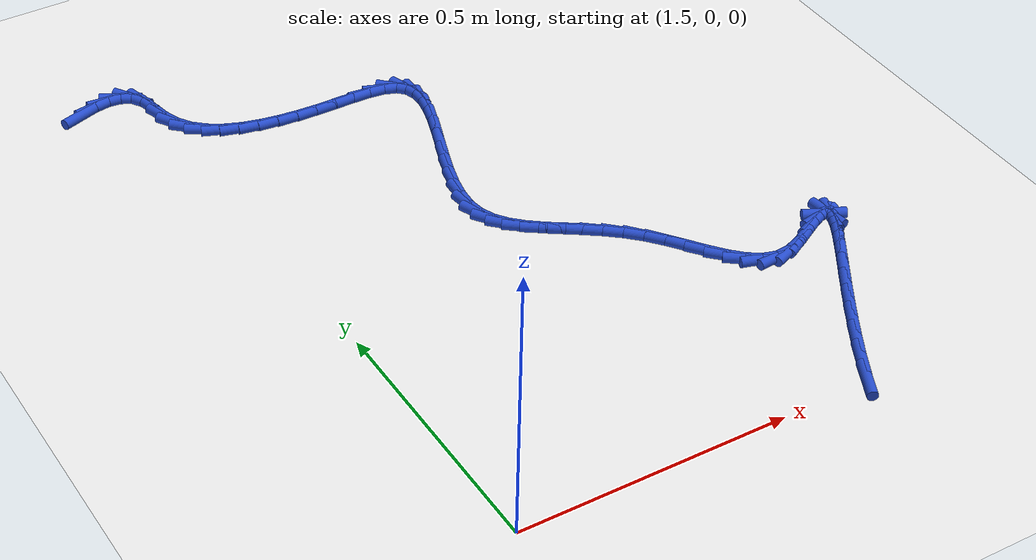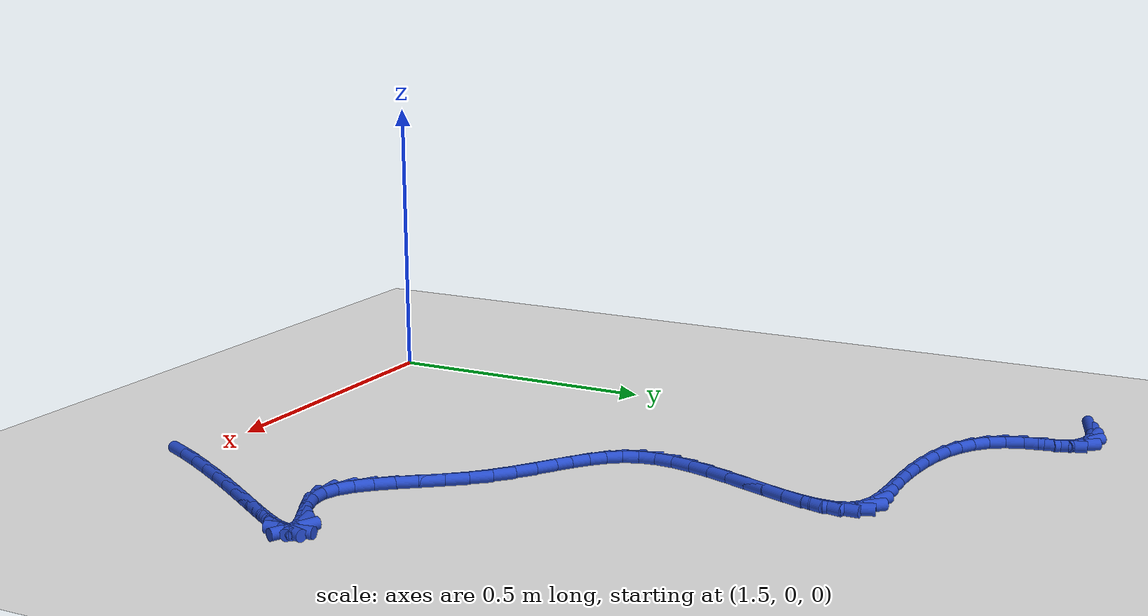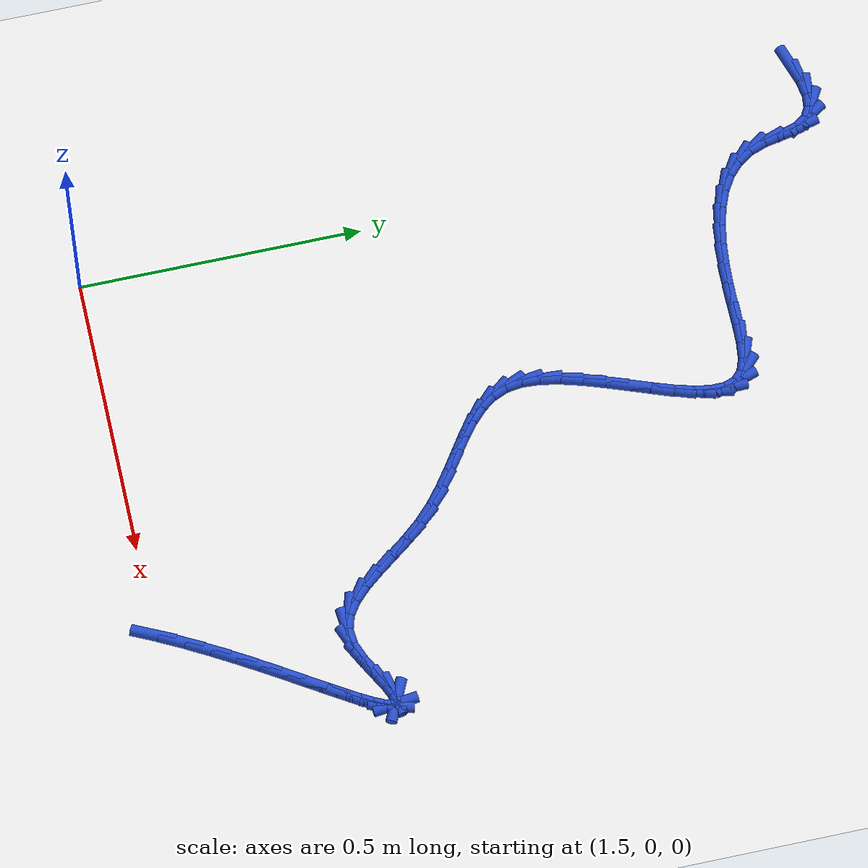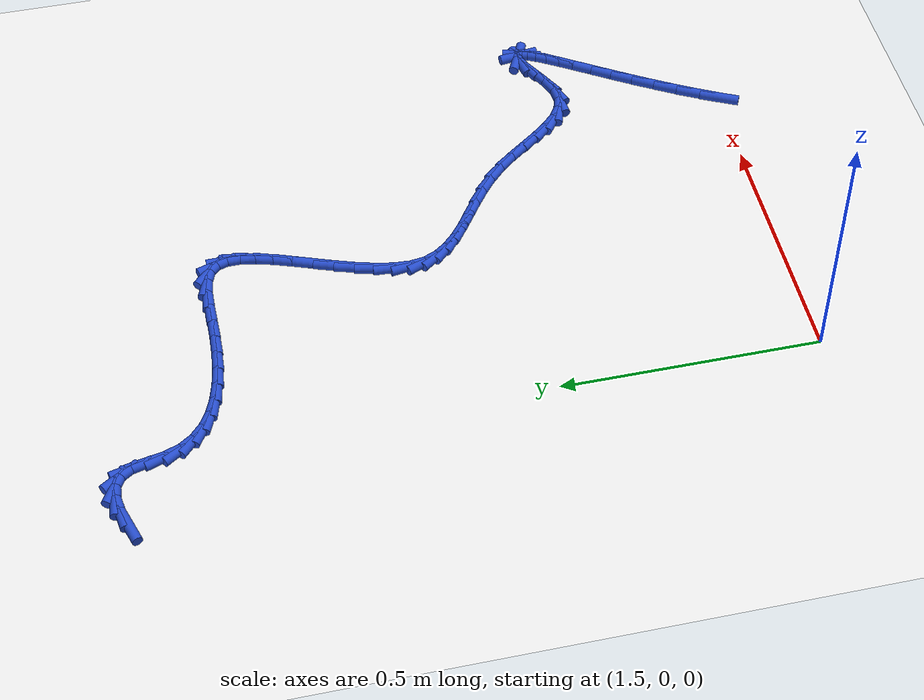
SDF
<sdf version="1.6">
 <world name="default">
  <model name="ground_plane">
   <static>1</static>
   <link name="link">
    <collision name="collision">
     <geometry><plane><normal>0 0 1</normal><size>100 100</size></plane></geometry>
     <surface><friction><ode><mu>100</mu><mu2>50</mu2></ode></friction></surface>
    </collision>
    <visual name="visual">
     <cast_shadows>0</cast_shadows>
     <geometry><plane><normal>0 0 1</normal><size>100 100</size></plane></geometry>
     <material>
      <script><uri>file://media/materials/scripts/gazebo.material</uri><name>Gazebo/WhiteGlow</name></script>
     </material>
    </visual>
   </link>
  </model>
  <model name="line">
   <link name="link_68">
    <pose>1.357984232766973 1.3039840763334787 0.01 0 1.57 0.31671017357711156</pose>
    <collision name="collision">
     <geometry><cylinder><radius>0.01</radius><length>0.08</length></cylinder></geometry>
    </collision>
    <visual name="visual">
     <material>
      <script><name>Gazebo/Blue</name><uri>file://media/materials/scripts/gazebo.material</uri></script>
     </material>
     <geometry><cylinder><radius>0.01</radius><length>0.08</length></cylinder></geometry>
    </visual>
   </link>
   <link name="link_69">
    <pose>1.3902005820272887 1.3145427353385408 0.01 0 1.57 0.15907261105636522</pose>
    <collision name="collision">
     <geometry><cylinder><radius>0.01</radius><length>0.08</length></cylinder></geometry>
    </collision>
    <visual name="visual">
     <material>
      <script><name>Gazebo/Blue</name><uri>file://media/materials/scripts/gazebo.material</uri></script>
     </material>
     <geometry><cylinder><radius>0.01</radius><length>0.08</length></cylinder></geometry>
    </visual>
   </link>
   <link name="link_70">
    <pose>1.4188739896930114 1.3191427545501075 0.01 0 1.57 -0.10202305257384771</pose>
    <collision name="collision">
     <geometry><cylinder><radius>0.01</radius><length>0.08</length></cylinder></geometry>
    </collision>
    <visual name="visual">
     <material>
      <script><name>Gazebo/Blue</name><uri>file://media/materials/scripts/gazebo.material</uri></script>
     </material>
     <geometry><cylinder><radius>0.01</radius><length>0.08</length></cylinder></geometry>
    </visual>
   </link>
   <link name="link_71">
    <pose>1.44320340000339 1.3166519458104688 0.01 0 1.57 -0.5093203163931969</pose>
    <collision name="collision">
     <geometry><cylinder><radius>0.01</radius><length>0.08</length></cylinder></geometry>
    </collision>
    <visual name="visual">
     <material>
      <script><name>Gazebo/Blue</name><uri>file://media/materials/scripts/gazebo.material</uri></script>
     </material>
     <geometry><cylinder><radius>0.01</radius><length>0.08</length></cylinder></geometry>
    </visual>
   </link>
   <link name="link_72">
    <pose>1.4623877571976727 1.3059381209619132 0.01 0 1.57 -0.9876764601237008</pose>
    <collision name="collision">
     <geometry><cylinder><radius>0.01</radius><length>0.08</length></cylinder></geometry>
    </collision>
    <visual name="visual">
     <material>
      <script><name>Gazebo/Blue</name><uri>file://media/materials/scripts/gazebo.material</uri></script>
     </material>
     <geometry><cylinder><radius>0.01</radius><length>0.08</length></cylinder></geometry>
    </visual>
   </link>
   <link name="link_73">
    <pose>1.4756260159098262 1.2858691046891282 0.01 0 1.57 -1.315060683871717</pose>
    <collision name="collision">
     <geometry><cylinder><radius>0.01</radius><length>0.08</length></cylinder></geometry>
    </collision>
    <visual name="visual">
     <material>
      <script><name>Gazebo/Blue</name><uri>file://media/materials/scripts/gazebo.material</uri></script>
     </material>
     <geometry><cylinder><radius>0.01</radius><length>0.08</length></cylinder></geometry>
    </visual>
   </link>
   <link name="link_74">
    <pose>1.483249513755391 1.2567117509358015 0.01 0 1.57 -1.3721608666009506</pose>
    <collision name="collision">
     <geometry><cylinder><radius>0.01</radius><length>0.08</length></cylinder></geometry>
    </collision>
    <visual name="visual">
     <material>
      <script><name>Gazebo/Blue</name><uri>file://media/materials/scripts/gazebo.material</uri></script>
     </material>
     <geometry><cylinder><radius>0.01</radius><length>0.08</length></cylinder></geometry>
    </visual>
   </link>
   <link name="link_75">
    <pose>1.4898377892947974 1.2239814536861517 0.01 0 1.57 -1.2237694278271536</pose>
    <collision name="collision">
     <geometry><cylinder><radius>0.01</radius><length>0.08</length></cylinder></geometry>
    </collision>
    <visual name="visual">
     <material>
      <script><name>Gazebo/Blue</name><uri>file://media/materials/scripts/gazebo.material</uri></script>
     </material>
     <geometry><cylinder><radius>0.01</radius><length>0.08</length></cylinder></geometry>
    </visual>
   </link>
   <link name="link_76">
    <pose>1.5006561989146605 1.1940684874368372 0.01 0 1.57 -0.9787365424061897</pose>
    <collision name="collision">
     <geometry><cylinder><radius>0.01</radius><length>0.08</length></cylinder></geometry>
    </collision>
    <visual name="visual">
     <material>
      <script><name>Gazebo/Blue</name><uri>file://media/materials/scripts/gazebo.material</uri></script>
     </material>
     <geometry><cylinder><radius>0.01</radius><length>0.08</length></cylinder></geometry>
    </visual>
   </link>
   <link name="link_77">
    <pose>1.5173630051598905 1.1692272399546635 0.01 0 1.57 -0.7440533309343083</pose>
    <collision name="collision">
     <geometry><cylinder><radius>0.01</radius><length>0.08</length></cylinder></geometry>
    </collision>
    <visual name="visual">
     <material>
      <script><name>Gazebo/Blue</name><uri>file://media/materials/scripts/gazebo.material</uri></script>
     </material>
     <geometry><cylinder><radius>0.01</radius><length>0.08</length></cylinder></geometry>
    </visual>
   </link>
   <link name="link_78">
    <pose>1.539288923358708 1.1490433379292175 0.01 0 1.57 -0.5438409190188314</pose>
    <collision name="collision">
     <geometry><cylinder><radius>0.01</radius><length>0.08</length></cylinder></geometry>
    </collision>
    <visual name="visual">
     <material>
      <script><name>Gazebo/Blue</name><uri>file://media/materials/scripts/gazebo.material</uri></script>
     </material>
     <geometry><cylinder><radius>0.01</radius><length>0.08</length></cylinder></geometry>
    </visual>
   </link>
   <link name="link_79">
    <pose>1.5657258588647365 1.133057908609273 0.01 0 1.57 -0.3847719693417887</pose>
    <collision name="collision">
     <geometry><cylinder><radius>0.01</radius><length>0.08</length></cylinder></geometry>
    </collision>
    <visual name="visual">
     <material>
      <script><name>Gazebo/Blue</name><uri>file://media/materials/scripts/gazebo.material</uri></script>
     </material>
     <geometry><cylinder><radius>0.01</radius><length>0.08</length></cylinder></geometry>
    </visual>
   </link>
   <link name="link_80">
    <pose>1.5959657170316013 1.1208120792436034 0.01 0 1.57 -0.26272559939670925</pose>
    <collision name="collision">
     <geometry><cylinder><radius>0.01</radius><length>0.08</length></cylinder></geometry>
    </collision>
    <visual name="visual">
     <material>
      <script><name>Gazebo/Blue</name><uri>file://media/materials/scripts/gazebo.material</uri></script>
     </material>
     <geometry><cylinder><radius>0.01</radius><length>0.08</length></cylinder></geometry>
    </visual>
   </link>
   <link name="link_81">
    <pose>1.629300403212926 1.1118469770809822 0.01 0 1.57 -0.17031059285199274</pose>
    <collision name="collision">
     <geometry><cylinder><radius>0.01</radius><length>0.08</length></cylinder></geometry>
    </collision>
    <visual name="visual">
     <material>
      <script><name>Gazebo/Blue</name><uri>file://media/materials/scripts/gazebo.material</uri></script>
     </material>
     <geometry><cylinder><radius>0.01</radius><length>0.08</length></cylinder></geometry>
    </visual>
   </link>
   <link name="link_82">
    <pose>1.6650218227623363 1.1057037293701835 0.01 0 1.57 -0.10073435415353017</pose>
    <collision name="collision">
     <geometry><cylinder><radius>0.01</radius><length>0.08</length></cylinder></geometry>
    </collision>
    <visual name="visual">
     <material>
      <script><name>Gazebo/Blue</name><uri>file://media/materials/scripts/gazebo.material</uri></script>
     </material>
     <geometry><cylinder><radius>0.01</radius><length>0.08</length></cylinder></geometry>
    </visual>
   </link>
   <link name="link_83">
    <pose>1.7024218810334553 1.1019234633599808 0.01 0 1.57 -0.04885677895130609</pose>
    <collision name="collision">
     <geometry><cylinder><radius>0.01</radius><length>0.08</length></cylinder></geometry>
    </collision>
    <visual name="visual">
     <material>
      <script><name>Gazebo/Blue</name><uri>file://media/materials/scripts/gazebo.material</uri></script>
     </material>
     <geometry><cylinder><radius>0.01</radius><length>0.08</length></cylinder></geometry>
    </visual>
   </link>
   <link name="link_84">
    <pose>1.740792483379907 1.1000473062991474 0.01 0 1.57 -0.011170696603364023</pose>
    <collision name="collision">
     <geometry><cylinder><radius>0.01</radius><length>0.08</length></cylinder></geometry>
    </collision>
    <visual name="visual">
     <material>
      <script><name>Gazebo/Blue</name><uri>file://media/materials/scripts/gazebo.material</uri></script>
     </material>
     <geometry><cylinder><radius>0.01</radius><length>0.08</length></cylinder></geometry>
    </visual>
   </link>
   <link name="link_85">
    <pose>1.779424881035268 1.0996157375547049 0.01 0 1.57 0.005630438336815097</pose>
    <collision name="collision">
     <geometry><cylinder><radius>0.01</radius><length>0.08</length></cylinder></geometry>
    </collision>
    <visual name="visual">
     <material>
      <script><name>Gazebo/Blue</name><uri>file://media/materials/scripts/gazebo.material</uri></script>
     </material>
     <geometry><cylinder><radius>0.01</radius><length>0.08</length></cylinder></geometry>
    </visual>
   </link>
   <link name="link_86">
    <pose>1.8172666161727216 1.099828805362506 0.01 0 1.57 -0.023938430077370922</pose>
    <collision name="collision">
     <geometry><cylinder><radius>0.01</radius><length>0.08</length></cylinder></geometry>
    </collision>
    <visual name="visual">
     <material>
      <script><name>Gazebo/Blue</name><uri>file://media/materials/scripts/gazebo.material</uri></script>
     </material>
     <geometry><cylinder><radius>0.01</radius><length>0.08</length></cylinder></geometry>
    </visual>
   </link>
   <link name="link_87">
    <pose>1.8523586240467014 1.098988597286301 0.01 0 1.57 -0.12299641324873131</pose>
    <collision name="collision">
     <geometry><cylinder><radius>0.01</radius><length>0.08</length></cylinder></geometry>
    </collision>
    <visual name="visual">
     <material>
      <script><name>Gazebo/Blue</name><uri>file://media/materials/scripts/gazebo.material</uri></script>
     </material>
     <geometry><cylinder><radius>0.01</radius><length>0.08</length></cylinder></geometry>
    </visual>
   </link>
   <link name="link_88">
    <pose>1.8825941044489902 1.095250874369946 0.01 0 1.57 -0.3494113123286924</pose>
    <collision name="collision">
     <geometry><cylinder><radius>0.01</radius><length>0.08</length></cylinder></geometry>
    </collision>
    <visual name="visual">
     <material>
      <script><name>Gazebo/Blue</name><uri>file://media/materials/scripts/gazebo.material</uri></script>
     </material>
     <geometry><cylinder><radius>0.01</radius><length>0.08</length></cylinder></geometry>
    </visual>
   </link>
   <link name="link_89">
    <pose>1.9058662571713731 1.0867713976572968 0.01 0 1.57 -0.7852889502611495</pose>
    <collision name="collision">
     <geometry><cylinder><radius>0.01</radius><length>0.08</length></cylinder></geometry>
    </collision>
    <visual name="visual">
     <material>
      <script><name>Gazebo/Blue</name><uri>file://media/materials/scripts/gazebo.material</uri></script>
     </material>
     <geometry><cylinder><radius>0.01</radius><length>0.08</length></cylinder></geometry>
    </visual>
   </link>
   <link name="link_90">
    <pose>1.9205516771792581 1.0720891849806957 0.01 0 1.57 -1.2543935619564568</pose>
    <collision name="collision">
     <geometry><cylinder><radius>0.01</radius><length>0.08</length></cylinder></geometry>
    </collision>
    <visual name="visual">
     <material>
      <script><name>Gazebo/Blue</name><uri>file://media/materials/scripts/gazebo.material</uri></script>
     </material>
     <geometry><cylinder><radius>0.01</radius><length>0.08</length></cylinder></geometry>
    </visual>
   </link>
   <link name="link_91">
    <pose>1.9272823306824214 1.0515314109169587 0.01 0 1.57 -1.5682519722169974</pose>
    <collision name="collision">
     <geometry><cylinder><radius>0.01</radius><length>0.08</length></cylinder></geometry>
    </collision>
    <visual name="visual">
     <material>
      <script><name>Gazebo/Blue</name><uri>file://media/materials/scripts/gazebo.material</uri></script>
     </material>
     <geometry><cylinder><radius>0.01</radius><length>0.08</length></cylinder></geometry>
    </visual>
   </link>
   <link name="link_92">
    <pose>1.927347428309867 1.025946342099895 0.01 0 1.57 1.3942123399644362</pose>
    <collision name="collision">
     <geometry><cylinder><radius>0.01</radius><length>0.08</length></cylinder></geometry>
    </collision>
    <visual name="visual">
     <material>
      <script><name>Gazebo/Blue</name><uri>file://media/materials/scripts/gazebo.material</uri></script>
     </material>
     <geometry><cylinder><radius>0.01</radius><length>0.08</length></cylinder></geometry>
    </visual>
   </link>
   <link name="link_93">
    <pose>1.9220362568196008 0.9961823055217074 0.01 0 1.57 1.2941028281576938</pose>
    <collision name="collision">
     <geometry><cylinder><radius>0.01</radius><length>0.08</length></cylinder></geometry>
    </collision>
    <visual name="visual">
     <material>
      <script><name>Gazebo/Blue</name><uri>file://media/materials/scripts/gazebo.material</uri></script>
     </material>
     <geometry><cylinder><radius>0.01</radius><length>0.08</length></cylinder></geometry>
    </visual>
   </link>
   <link name="link_94">
    <pose>1.9126381029696307 0.9630876281746011 0.01 0 1.57 1.2405486740473053</pose>
    <collision name="collision">
     <geometry><cylinder><radius>0.01</radius><length>0.08</length></cylinder></geometry>
    </collision>
    <visual name="visual">
     <material>
      <script><name>Gazebo/Blue</name><uri>file://media/materials/scripts/gazebo.material</uri></script>
     </material>
     <geometry><cylinder><radius>0.01</radius><length>0.08</length></cylinder></geometry>
    </visual>
   </link>
   <link name="link_95">
    <pose>1.900442253517962 0.9275106370507793 0.01 0 1.57 1.2179254222900722</pose>
    <collision name="collision">
     <geometry><cylinder><radius>0.01</radius><length>0.08</length></cylinder></geometry>
    </collision>
    <visual name="visual">
     <material>
      <script><name>Gazebo/Blue</name><uri>file://media/materials/scripts/gazebo.material</uri></script>
     </material>
     <geometry><cylinder><radius>0.01</radius><length>0.08</length></cylinder></geometry>
    </visual>
   </link>
   <link name="link_96">
    <pose>1.8867379952226042 0.8902996591424478 0.01 0 1.57 1.2195538466960876</pose>
    <collision name="collision">
     <geometry><cylinder><radius>0.01</radius><length>0.08</length></cylinder></geometry>
    </collision>
    <visual name="visual">
     <material>
      <script><name>Gazebo/Blue</name><uri>file://media/materials/scripts/gazebo.material</uri></script>
     </material>
     <geometry><cylinder><radius>0.01</radius><length>0.08</length></cylinder></geometry>
    </visual>
   </link>
   <link name="link_97">
    <pose>1.872814614841562 0.85230302144181 0.01 0 1.57 1.2441058102374063</pose>
    <collision name="collision">
     <geometry><cylinder><radius>0.01</radius><length>0.08</length></cylinder></geometry>
    </collision>
    <visual name="visual">
     <material>
      <script><name>Gazebo/Blue</name><uri>file://media/materials/scripts/gazebo.material</uri></script>
     </material>
     <geometry><cylinder><radius>0.01</radius><length>0.08</length></cylinder></geometry>
    </visual>
   </link>
   <link name="link_98">
    <pose>1.8599613991328432 0.8143690509410705 0.01 0 1.57 1.294601273336346</pose>
    <collision name="collision">
     <geometry><cylinder><radius>0.01</radius><length>0.08</length></cylinder></geometry>
    </collision>
    <visual name="visual">
     <material>
      <script><name>Gazebo/Blue</name><uri>file://media/materials/scripts/gazebo.material</uri></script>
     </material>
     <geometry><cylinder><radius>0.01</radius><length>0.08</length></cylinder></geometry>
    </visual>
   </link>
   <link name="link_99">
    <pose>1.849467634854455 0.7773460746324334 0.01 0 1.57 1.3790706447845318</pose>
    <collision name="collision">
     <geometry><cylinder><radius>0.01</radius><length>0.08</length></cylinder></geometry>
    </collision>
    <visual name="visual">
     <material>
      <script><name>Gazebo/Blue</name><uri>file://media/materials/scripts/gazebo.material</uri></script>
     </material>
     <geometry><cylinder><radius>0.01</radius><length>0.08</length></cylinder></geometry>
    </visual>
   </link>
   <link name="link_100">
    <pose>1.8426226087644035 0.7420824195081022 0.01 0 1.57 1.512465930182629</pose>
    <collision name="collision">
     <geometry><cylinder><radius>0.01</radius><length>0.08</length></cylinder></geometry>
    </collision>
    <visual name="visual">
     <material>
      <script><name>Gazebo/Blue</name><uri>file://media/materials/scripts/gazebo.material</uri></script>
     </material>
     <geometry><cylinder><radius>0.01</radius><length>0.08</length></cylinder></geometry>
    </visual>
   </link>
   <link name="link_101">
    <pose>1.8407156076206963 0.7094264125602825 0.01 0 1.57 -1.4244565704516732</pose>
    <collision name="collision">
     <geometry><cylinder><radius>0.01</radius><length>0.08</length></cylinder></geometry>
    </collision>
    <visual name="visual">
     <material>
      <script><name>Gazebo/Blue</name><uri>file://media/materials/scripts/gazebo.material</uri></script>
     </material>
     <geometry><cylinder><radius>0.01</radius><length>0.08</length></cylinder></geometry>
    </visual>
   </link>
   <link name="link_102">
    <pose>1.845021078855001 0.6802156702566956 0.01 0 1.57 -1.166995729403911</pose>
    <collision name="collision">
     <geometry><cylinder><radius>0.01</radius><length>0.08</length></cylinder></geometry>
    </collision>
    <visual name="visual">
     <material>
      <script><name>Gazebo/Blue</name><uri>file://media/materials/scripts/gazebo.material</uri></script>
     </material>
     <geometry><cylinder><radius>0.01</radius><length>0.08</length></cylinder></geometry>
    </visual>
   </link>
   <link name="link_103">
    <pose>1.8559412541995979 0.6546582732365112 0.01 0 1.57 -0.9387644713344931</pose>
    <collision name="collision">
     <geometry><cylinder><radius>0.01</radius><length>0.08</length></cylinder></geometry>
    </collision>
    <visual name="visual">
     <material>
      <script><name>Gazebo/Blue</name><uri>file://media/materials/scripts/gazebo.material</uri></script>
     </material>
     <geometry><cylinder><radius>0.01</radius><length>0.08</length></cylinder></geometry>
    </visual>
   </link>
   <link name="link_104">
    <pose>1.8725367618469773 0.6319939780229662 0.01 0 1.57 -0.7709746836606106</pose>
    <collision name="collision">
     <geometry><cylinder><radius>0.01</radius><length>0.08</length></cylinder></geometry>
    </collision>
    <visual name="visual">
     <material>
      <script><name>Gazebo/Blue</name><uri>file://media/materials/scripts/gazebo.material</uri></script>
     </material>
     <geometry><cylinder><radius>0.01</radius><length>0.08</length></cylinder></geometry>
    </visual>
   </link>
   <link name="link_105">
    <pose>1.893754022277794 0.6113801098708085 0.01 0 1.57 -0.6642668102270004</pose>
    <collision name="collision">
     <geometry><cylinder><radius>0.01</radius><length>0.08</length></cylinder></geometry>
    </collision>
    <visual name="visual">
     <material>
      <script><name>Gazebo/Blue</name><uri>file://media/materials/scripts/gazebo.material</uri></script>
     </material>
     <geometry><cylinder><radius>0.01</radius><length>0.08</length></cylinder></geometry>
    </visual>
   </link>
   <link name="link_106">
    <pose>1.9185394559727016 0.591973994034785 0.01 0 1.57 -0.6090281304868681</pose>
    <collision name="collision">
     <geometry><cylinder><radius>0.01</radius><length>0.08</length></cylinder></geometry>
    </collision>
    <visual name="visual">
     <material>
      <script><name>Gazebo/Blue</name><uri>file://media/materials/scripts/gazebo.material</uri></script>
     </material>
     <geometry><cylinder><radius>0.01</radius><length>0.08</length></cylinder></geometry>
    </visual>
   </link>
   <link name="link_107">
    <pose>1.9458394834123558 0.572932955769643 0.01 0 1.57 -0.5962518556386378</pose>
    <collision name="collision">
     <geometry><cylinder><radius>0.01</radius><length>0.08</length></cylinder></geometry>
    </collision>
    <visual name="visual">
     <material>
      <script><name>Gazebo/Blue</name><uri>file://media/materials/scripts/gazebo.material</uri></script>
     </material>
     <geometry><cylinder><radius>0.01</radius><length>0.08</length></cylinder></geometry>
    </visual>
   </link>
   <link name="link_108">
    <pose>1.97460052507741 0.5534143203301296 0.01 0 1.57 -0.6203466720971597</pose>
    <collision name="collision">
     <geometry><cylinder><radius>0.01</radius><length>0.08</length></cylinder></geometry>
    </collision>
    <visual name="visual">
     <material>
      <script><name>Gazebo/Blue</name><uri>file://media/materials/scripts/gazebo.material</uri></script>
     </material>
     <geometry><cylinder><radius>0.01</radius><length>0.08</length></cylinder></geometry>
    </visual>
   </link>
   <link name="link_109">
    <pose>2.0037690014485197 0.5325754129709914 0.01 0 1.57 -0.6786619327854504</pose>
    <collision name="collision">
     <geometry><cylinder><radius>0.01</radius><length>0.08</length></cylinder></geometry>
    </collision>
    <visual name="visual">
     <material>
      <script><name>Gazebo/Blue</name><uri>file://media/materials/scripts/gazebo.material</uri></script>
     </material>
     <geometry><cylinder><radius>0.01</radius><length>0.08</length></cylinder></geometry>
    </visual>
   </link>
   <link name="link_110">
    <pose>2.032291333006337 0.5095735589469762 0.01 0 1.57 -0.769776699708983</pose>
    <collision name="collision">
     <geometry><cylinder><radius>0.01</radius><length>0.08</length></cylinder></geometry>
    </collision>
    <visual name="visual">
     <material>
      <script><name>Gazebo/Blue</name><uri>file://media/materials/scripts/gazebo.material</uri></script>
     </material>
     <geometry><cylinder><radius>0.01</radius><length>0.08</length></cylinder></geometry>
    </visual>
   </link>
   <link name="link_111">
    <pose>2.059117914057881 0.4835722933191094 0.01 0 1.57 -0.8665591926674272</pose>
    <collision name="collision">
     <geometry><cylinder><radius>0.01</radius><length>0.08</length></cylinder></geometry>
    </collision>
    <visual name="visual">
     <material>
      <script><name>Gazebo/Blue</name><uri>file://media/materials/scripts/gazebo.material</uri></script>
     </material>
     <geometry><cylinder><radius>0.01</radius><length>0.08</length></cylinder></geometry>
    </visual>
   </link>
   <link name="link_112">
    <pose>2.0837435421055166 0.4545858773935662 0.01 0 1.57 -0.9204277022349339</pose>
    <collision name="collision">
     <geometry><cylinder><radius>0.01</radius><length>0.08</length></cylinder></geometry>
    </collision>
    <visual name="visual">
     <material>
      <script><name>Gazebo/Blue</name><uri>file://media/materials/scripts/gazebo.material</uri></script>
     </material>
     <geometry><cylinder><radius>0.01</radius><length>0.08</length></cylinder></geometry>
    </visual>
   </link>
   <link name="link_113">
    <pose>2.106756369809946 0.4243371332204978 0.01 0 1.57 -0.9287876067524364</pose>
    <collision name="collision">
     <geometry><cylinder><radius>0.01</radius><length>0.08</length></cylinder></geometry>
    </collision>
    <visual name="visual">
     <material>
      <script><name>Gazebo/Blue</name><uri>file://media/materials/scripts/gazebo.material</uri></script>
     </material>
     <geometry><cylinder><radius>0.01</radius><length>0.08</length></cylinder></geometry>
    </visual>
   </link>
   <link name="link_114">
    <pose>2.128875350253053 0.39475328163413337 0.01 0 1.57 -0.8881830602804724</pose>
    <collision name="collision">
     <geometry><cylinder><radius>0.01</radius><length>0.08</length></cylinder></geometry>
    </collision>
    <visual name="visual">
     <material>
      <script><name>Gazebo/Blue</name><uri>file://media/materials/scripts/gazebo.material</uri></script>
     </material>
     <geometry><cylinder><radius>0.01</radius><length>0.08</length></cylinder></geometry>
    </visual>
   </link>
   <link name="link_115">
    <pose>2.150819436516722 0.3677615434687006 0.01 0 1.57 -0.7850480507870996</pose>
    <collision name="collision">
     <geometry><cylinder><radius>0.01</radius><length>0.08</length></cylinder></geometry>
    </collision>
    <visual name="visual">
     <material>
      <script><name>Gazebo/Blue</name><uri>file://media/materials/scripts/gazebo.material</uri></script>
     </material>
     <geometry><cylinder><radius>0.01</radius><length>0.08</length></cylinder></geometry>
    </visual>
   </link>
   <link name="link_116">
    <pose>2.173307581682838 0.34528913955842755 0.01 0 1.57 -0.5935708265295624</pose>
    <collision name="collision">
     <geometry><cylinder><radius>0.01</radius><length>0.08</length></cylinder></geometry>
    </collision>
    <visual name="visual">
     <material>
      <script><name>Gazebo/Blue</name><uri>file://media/materials/scripts/gazebo.material</uri></script>
     </material>
     <geometry><cylinder><radius>0.01</radius><length>0.08</length></cylinder></geometry>
    </visual>
   </link>
   <link name="link_117">
    <pose>2.197058738833286 0.32926329073754235 0.01 0 1.57 -0.2890355787819289</pose>
    <collision name="collision">
     <geometry><cylinder><radius>0.01</radius><length>0.08</length></cylinder></geometry>
    </collision>
    <visual name="visual">
     <material>
      <script><name>Gazebo/Blue</name><uri>file://media/materials/scripts/gazebo.material</uri></script>
     </material>
     <geometry><cylinder><radius>0.01</radius><length>0.08</length></cylinder></geometry>
    </visual>
   </link>
   <link name="link_118">
    <pose>2.2227918610499495 0.32161121784027363 0.01 0 1.57 0.0918886265286541</pose>
    <collision name="collision">
     <geometry><cylinder><radius>0.01</radius><length>0.08</length></cylinder></geometry>
    </collision>
    <visual name="visual">
     <material>
      <script><name>Gazebo/Blue</name><uri>file://media/materials/scripts/gazebo.material</uri></script>
     </material>
     <geometry><cylinder><radius>0.01</radius><length>0.08</length></cylinder></geometry>
    </visual>
   </link>
   <link name="link_119">
    <pose>2.2512101048645783 0.3242299056990165 0.01 0 1.57 0.37799144879569474</pose>
    <collision name="collision">
     <geometry><cylinder><radius>0.01</radius><length>0.08</length></cylinder></geometry>
    </collision>
    <visual name="visual">
     <material>
      <script><name>Gazebo/Blue</name><uri>file://media/materials/scripts/gazebo.material</uri></script>
     </material>
     <geometry><cylinder><radius>0.01</radius><length>0.08</length></cylinder></geometry>
    </visual>
   </link>
   <link name="link_120">
    <pose>2.281595060172218 0.3362953341757802 0.01 0 1.57 0.49856887861314303</pose>
    <collision name="collision">
     <geometry><cylinder><radius>0.01</radius><length>0.08</length></cylinder></geometry>
    </collision>
    <visual name="visual">
     <material>
      <script><name>Gazebo/Blue</name><uri>file://media/materials/scripts/gazebo.material</uri></script>
     </material>
     <geometry><cylinder><radius>0.01</radius><length>0.08</length></cylinder></geometry>
    </visual>
   </link>
   <link name="link_121">
    <pose>2.3106980534296957 0.35214033388158494 0.01 0 1.57 0.5072572029555085</pose>
    <collision name="collision">
     <geometry><cylinder><radius>0.01</radius><length>0.08</length></cylinder></geometry>
    </collision>
    <visual name="visual">
     <material>
      <script><name>Gazebo/Blue</name><uri>file://media/materials/scripts/gazebo.material</uri></script>
     </material>
     <geometry><cylinder><radius>0.01</radius><length>0.08</length></cylinder></geometry>
    </visual>
   </link>
   <link name="link_122">
    <pose>2.335059840872412 0.3656797201311021 0.01 0 1.57 0.4172800382748268</pose>
    <collision name="collision">
     <geometry><cylinder><radius>0.01</radius><length>0.08</length></cylinder></geometry>
    </collision>
    <visual name="visual">
     <material>
      <script><name>Gazebo/Blue</name><uri>file://media/materials/scripts/gazebo.material</uri></script>
     </material>
     <geometry><cylinder><radius>0.01</radius><length>0.08</length></cylinder></geometry>
    </visual>
   </link>
   <link name="link_123">
    <pose>2.352939041916215 0.37360582205976395 0.01 0 1.57 0.20169323654498145</pose>
    <collision name="collision">
     <geometry><cylinder><radius>0.01</radius><length>0.08</length></cylinder></geometry>
    </collision>
    <visual name="visual">
     <material>
      <script><name>Gazebo/Blue</name><uri>file://media/materials/scripts/gazebo.material</uri></script>
     </material>
     <geometry><cylinder><radius>0.01</radius><length>0.08</length></cylinder></geometry>
    </visual>
   </link>
   <link name="link_124">
    <pose>2.364696483480167 0.3760099067747476 0.01 0 1.57 -0.43141135244658413</pose>
    <collision name="collision">
     <geometry><cylinder><radius>0.01</radius><length>0.08</length></cylinder></geometry>
    </collision>
    <visual name="visual">
     <material>
      <script><name>Gazebo/Blue</name><uri>file://media/materials/scripts/gazebo.material</uri></script>
     </material>
     <geometry><cylinder><radius>0.01</radius><length>0.08</length></cylinder></geometry>
    </visual>
   </link>
   <link name="link_125">
    <pose>2.370821190965353 0.3731905181091509 0.01 0 1.57 -1.4447940571823523</pose>
    <collision name="collision">
     <geometry><cylinder><radius>0.01</radius><length>0.08</length></cylinder></geometry>
    </collision>
    <visual name="visual">
     <material>
      <script><name>Gazebo/Blue</name><uri>file://media/materials/scripts/gazebo.material</uri></script>
     </material>
     <geometry><cylinder><radius>0.01</radius><length>0.08</length></cylinder></geometry>
    </visual>
   </link>
   <link name="link_126">
    <pose>2.371802189772863 0.36544619989607097 0.01 0 1.57 1.2821248914326113</pose>
    <collision name="collision">
     <geometry><cylinder><radius>0.01</radius><length>0.08</length></cylinder></geometry>
    </collision>
    <visual name="visual">
     <material>
      <script><name>Gazebo/Blue</name><uri>file://media/materials/scripts/gazebo.material</uri></script>
     </material>
     <geometry><cylinder><radius>0.01</radius><length>0.08</length></cylinder></geometry>
    </visual>
   </link>
   <link name="link_127">
    <pose>2.368128505303778 0.35307549596860566 0.01 0 1.57 1.1318757166422873</pose>
    <collision name="collision">
     <geometry><cylinder><radius>0.01</radius><length>0.08</length></cylinder></geometry>
    </collision>
    <visual name="visual">
     <material>
      <script><name>Gazebo/Blue</name><uri>file://media/materials/scripts/gazebo.material</uri></script>
     </material>
     <geometry><cylinder><radius>0.01</radius><length>0.08</length></cylinder></geometry>
    </visual>
   </link>
   <link name="link_128">
    <pose>2.360289162959188 0.33637695015985225 0.01 0 1.57 1.06367916808878</pose>
    <collision name="collision">
     <geometry><cylinder><radius>0.01</radius><length>0.08</length></cylinder></geometry>
    </collision>
    <visual name="visual">
     <material>
      <script><name>Gazebo/Blue</name><uri>file://media/materials/scripts/gazebo.material</uri></script>
     </material>
     <geometry><cylinder><radius>0.01</radius><length>0.08</length></cylinder></geometry>
    </visual>
   </link>
   <link name="link_129">
    <pose>2.348773188140178 0.3156491063029086 0.01 0 1.57 1.029522787940537</pose>
    <collision name="collision">
     <geometry><cylinder><radius>0.01</radius><length>0.08</length></cylinder></geometry>
    </collision>
    <visual name="visual">
     <material>
      <script><name>Gazebo/Blue</name><uri>file://media/materials/scripts/gazebo.material</uri></script>
     </material>
     <geometry><cylinder><radius>0.01</radius><length>0.08</length></cylinder></geometry>
    </visual>
   </link>
   <link name="link_130">
    <pose>2.3340696062478337 0.29119050823087195 0.01 0 1.57 1.0129603305314723</pose>
    <collision name="collision">
     <geometry><cylinder><radius>0.01</radius><length>0.08</length></cylinder></geometry>
    </collision>
    <visual name="visual">
     <material>
      <script><name>Gazebo/Blue</name><uri>file://media/materials/scripts/gazebo.material</uri></script>
     </material>
     <geometry><cylinder><radius>0.01</radius><length>0.08</length></cylinder></geometry>
    </visual>
   </link>
   <link name="link_131">
    <pose>2.316667442683242 0.2632996997768394 0.01 0 1.57 1.0070812115590375</pose>
    <collision name="collision">
     <geometry><cylinder><radius>0.01</radius><length>0.08</length></cylinder></geometry>
    </collision>
    <visual name="visual">
     <material>
      <script><name>Gazebo/Blue</name><uri>file://media/materials/scripts/gazebo.material</uri></script>
     </material>
     <geometry><cylinder><radius>0.01</radius><length>0.08</length></cylinder></geometry>
    </visual>
   </link>
   <link name="link_132">
    <pose>2.297055722847489 0.2322752247739095 0.01 0 1.57 1.008594695808808</pose>
    <collision name="collision">
     <geometry><cylinder><radius>0.01</radius><length>0.08</length></cylinder></geometry>
    </collision>
    <visual name="visual">
     <material>
      <script><name>Gazebo/Blue</name><uri>file://media/materials/scripts/gazebo.material</uri></script>
     </material>
     <geometry><cylinder><radius>0.01</radius><length>0.08</length></cylinder></geometry>
    </visual>
   </link>
   <link name="link_133">
    <pose>2.2757234721416606 0.19841562705517907 0.01 0 1.57 1.0158377790106068</pose>
    <collision name="collision">
     <geometry><cylinder><radius>0.01</radius><length>0.08</length></cylinder></geometry>
    </collision>
    <visual name="visual">
     <material>
      <script><name>Gazebo/Blue</name><uri>file://media/materials/scripts/gazebo.material</uri></script>
     </material>
     <geometry><cylinder><radius>0.01</radius><length>0.08</length></cylinder></geometry>
    </visual>
   </link>
   <link name="link_134">
    <pose>2.2531597159668437 0.1620194504537459 0.01 0 1.57 1.0279877367781518</pose>
    <collision name="collision">
     <geometry><cylinder><radius>0.01</radius><length>0.08</length></cylinder></geometry>
    </collision>
    <visual name="visual">
     <material>
      <script><name>Gazebo/Blue</name><uri>file://media/materials/scripts/gazebo.material</uri></script>
     </material>
     <geometry><cylinder><radius>0.01</radius><length>0.08</length></cylinder></geometry>
    </visual>
   </link>
   <link name="link_135">
    <pose>2.229853479724124 0.12338523880270671 0.01 0 1.57 1.0447157766631079</pose>
    <collision name="collision">
     <geometry><cylinder><radius>0.01</radius><length>0.08</length></cylinder></geometry>
    </collision>
    <visual name="visual">
     <material>
      <script><name>Gazebo/Blue</name><uri>file://media/materials/scripts/gazebo.material</uri></script>
     </material>
     <geometry><cylinder><radius>0.01</radius><length>0.08</length></cylinder></geometry>
    </visual>
   </link>
   <link name="link_136">
    <pose>2.206293788814587 0.0828115359351604 0.01 0 1.57 1.066026212043441</pose>
    <collision name="collision">
     <geometry><cylinder><radius>0.01</radius><length>0.08</length></cylinder></geometry>
    </collision>
    <visual name="visual">
     <material>
      <script><name>Gazebo/Blue</name><uri>file://media/materials/scripts/gazebo.material</uri></script>
     </material>
     <geometry><cylinder><radius>0.01</radius><length>0.08</length></cylinder></geometry>
    </visual>
   </link>
   <link name="link_137">
    <pose>2.1829696686393207 0.040596885684203755 0.01 0 1.57 1.092183652145226</pose>
    <collision name="collision">
     <geometry><cylinder><radius>0.01</radius><length>0.08</length></cylinder></geometry>
    </collision>
    <visual name="visual">
     <material>
      <script><name>Gazebo/Blue</name><uri>file://media/materials/scripts/gazebo.material</uri></script>
     </material>
     <geometry><cylinder><radius>0.01</radius><length>0.08</length></cylinder></geometry>
    </visual>
   </link>
   <link name="link_138">
    <pose>2.1603701445994092 -0.0029601681170656757 0.01 0 1.57 1.1236870964318133</pose>
    <collision name="collision">
     <geometry><cylinder><radius>0.01</radius><length>0.08</length></cylinder></geometry>
    </collision>
    <visual name="visual">
     <material>
      <script><name>Gazebo/Blue</name><uri>file://media/materials/scripts/gazebo.material</uri></script>
     </material>
     <geometry><cylinder><radius>0.01</radius><length>0.08</length></cylinder></geometry>
    </visual>
   </link>
  </model>
 </world>
</sdf>
